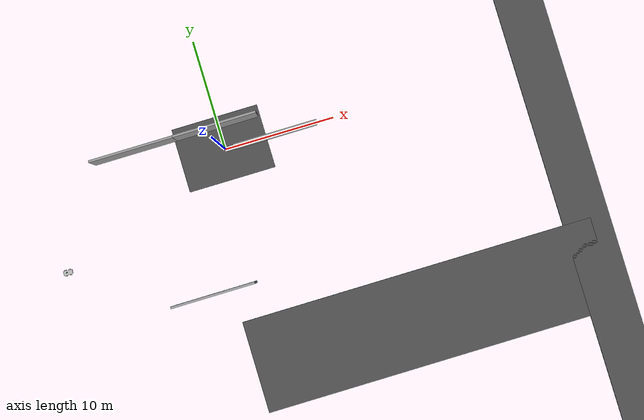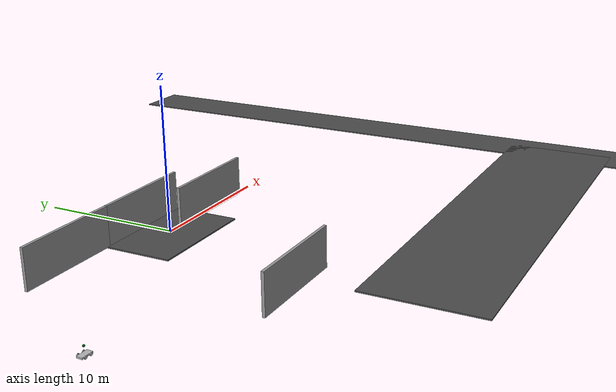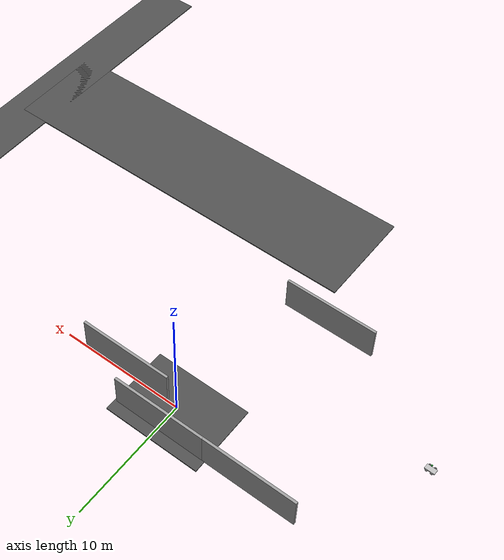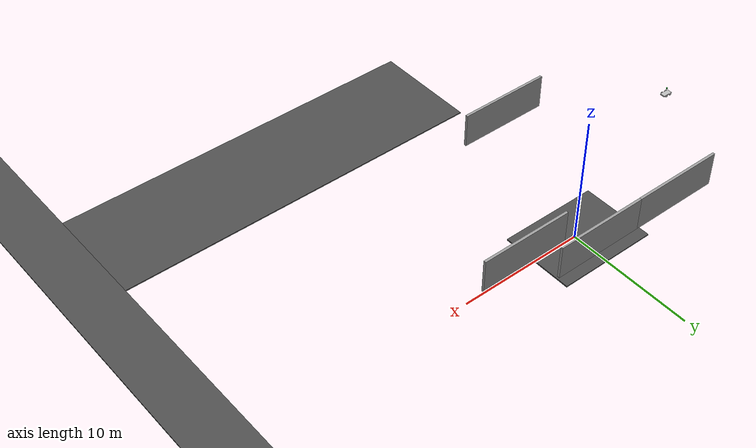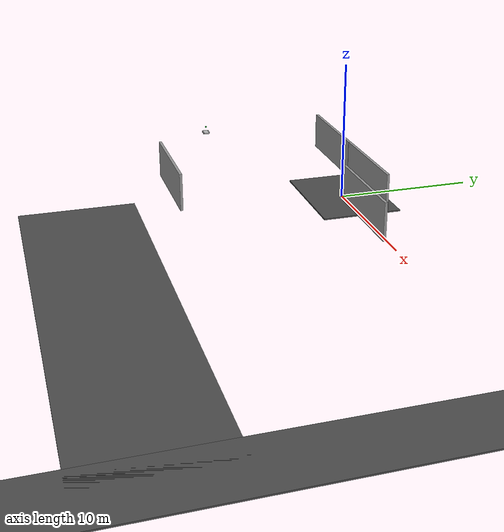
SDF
<sdf version="1.6">
 <world name="default">
  <light name="sun" type="directional">
   <pose>0 0 10 0 -0 0</pose>
   <diffuse>0.8 0.8 0.8 1</diffuse>
   <specular>0.1 0.1 0.1 1</specular>
   <attenuation>
    <range>1000</range>
    <constant>0.9</constant>
    <linear>0.01</linear>
    <quadratic>0.001</quadratic>
   </attenuation>
   <direction>-0.5 0.5 -1</direction>
  </light>
  <gravity>0 0 -9.8</gravity>
  <magnetic_field>6e-06 2.3e-05 -4.2e-05</magnetic_field>
  <atmosphere type="adiabatic"/>
  <physics name="default_physics" default="0" type="ode">
   <max_step_size>0.001</max_step_size>
   <real_time_factor>1</real_time_factor>
   <real_time_update_rate>1000</real_time_update_rate>
  </physics>
  <scene><ambient>0.4 0.4 0.4 1</ambient><background>0.7 0.7 0.7 1</background><shadows>1</shadows></scene>
  <spherical_coordinates>
   <surface_model>EARTH_WGS84</surface_model>
   <latitude_deg>0</latitude_deg>
   <longitude_deg>0</longitude_deg>
   <elevation>0</elevation>
   <heading_deg>0</heading_deg>
  </spherical_coordinates>
  <model name="asphalt_plane">
   <static>1</static>
   <link name="link">
    <collision name="collision"><geometry><box><size>7.87023 5.77134 0.101639</size></box></geometry></collision>
    <visual name="visual">
     <cast_shadows>0</cast_shadows>
     <geometry><box><size>7.87023 5.77134 0.101639</size></box></geometry>
     <material>
      <script>
       <uri>model://asphalt_plane/materials/scripts</uri>
       <uri>model://asphalt_plane/materials/textures</uri>
       <name>vrc/asphalt</name>
      </script>
     </material>
    </visual>
   </link>
   <pose>-0.150514 0.147671 0 0 -0 0</pose>
  </model>
  <model name="small_car">
   <link name="chassis">
    <inertial>
     <pose>0 0 0.203947 0 -0 0</pose>
     <mass>30.4</mass>
     <inertia>
      <ixx>5.03553</ixx>
      <ixy>4.03897e-28</ixy>
      <ixz>0</ixz>
      <iyy>25.0355</iyy>
      <iyz>0</iyz>
      <izz>4</izz>
     </inertia>
    </inertial>
    <collision name="chassis_fixed_joint_lump__collision_collision">
     <geometry><box><size>0.8 0.4 0.1</size></box></geometry>
    </collision>
    <collision name="chassis_fixed_joint_lump__camera_neg_y_collision_1">
     <pose>0 0 0.5 0 -0 3.14159</pose>
     <geometry><box><size>0.5 0.1 0.1</size></box></geometry>
    </collision>
    <collision name="chassis_fixed_joint_lump__camera_pos_x_collision_2">
     <pose>0 0 0.5 0 -0 0</pose>
     <geometry><box><size>0.1 0.5 0.1</size></box></geometry>
    </collision>
    <collision name="chassis_fixed_joint_lump__camera_neg_x_collision_3">
     <pose>0 0 0.5 0 -0 -5e-06</pose>
     <geometry><box><size>0.1 0.5 0.1</size></box></geometry>
    </collision>
    <collision name="chassis_fixed_joint_lump__camera_pos_y_collision_4">
     <pose>0 0 0.5 0 -0 3.14159</pose>
     <geometry><box><size>0.5 0.1 0.1</size></box></geometry>
    </collision>
    <visual name="chassis_visual_visual"><geometry><box><size>0.8 0.4 0.1</size></box></geometry></visual>
    <visual name="chassis_fixed_joint_lump__camera_neg_y_visual_1">
     <pose>0 0 0.5 0 -0 3.14159</pose>
     <geometry><box><size>0.1 0.1 0.1</size></box></geometry>
     <material>
      <script><name>Gazebo/Green</name><uri>file://media/materials/scripts/gazebo.material</uri></script>
     </material>
    </visual>
    <visual name="chassis_fixed_joint_lump__camera_pos_x_visual_2">
     <pose>0 0 0.5 0 -0 0</pose>
     <geometry><box><size>0.1 0.1 0.1</size></box></geometry>
     <material>
      <script><name>Gazebo/Green</name><uri>file://media/materials/scripts/gazebo.material</uri></script>
     </material>
    </visual>
    <visual name="chassis_fixed_joint_lump__camera_neg_x_visual_3">
     <pose>0 0 0.5 0 -0 -5e-06</pose>
     <geometry><box><size>0.1 0.1 0.1</size></box></geometry>
     <material>
      <script><name>Gazebo/Green</name><uri>file://media/materials/scripts/gazebo.material</uri></script>
     </material>
    </visual>
    <visual name="chassis_fixed_joint_lump__camera_pos_y_visual_4">
     <pose>0 0 0.5 0 -0 3.14159</pose>
     <geometry><box><size>0.1 0.1 0.1</size></box></geometry>
     <material>
      <script><name>Gazebo/Green</name><uri>file://media/materials/scripts/gazebo.material</uri></script>
     </material>
    </visual>
    <sensor name="camera4" type="wideanglecamera">
     <update_rate>30</update_rate>
     <camera name="head_4">
      <horizontal_fov>1.5708</horizontal_fov>
      <image><width>960</width><height>540</height><format>R8G8B8</format></image>
      <clip><near>0.02</near><far>300</far></clip>
      <lens>
       <type>custom</type>
       <custom_function><c1>1.07</c1><c2>4</c2><f>1</f><fun>tan</fun></custom_function>
       <scale_to_hfov>1</scale_to_hfov>
       <cutoff_angle>3.1415</cutoff_angle>
       <env_texture_size>512</env_texture_size>
      </lens>
     </camera>
     <plugin name="camera_controller" filename="libgazebo_ros_camera.so">
      <alwaysOn>true</alwaysOn>
      <updateRate>30.0</updateRate>
      <cameraName>mybot/camera4</cameraName>
      <imageTopicName>image_raw</imageTopicName>
      <cameraInfoTopicName>camera_info</cameraInfoTopicName>
      <frameName>camera</frameName>
      <hackBaseline>0.07</hackBaseline>
      <robotNamespace>/</robotNamespace>
     </plugin>
     <pose>0 0 0.5 0 -0 -1.5708</pose>
    </sensor>
    <sensor name="camera1" type="wideanglecamera">
     <update_rate>30</update_rate>
     <camera name="head_1">
      <horizontal_fov>1.5708</horizontal_fov>
      <image><width>960</width><height>540</height><format>R8G8B8</format></image>
      <clip><near>0.02</near><far>300</far></clip>
      <lens>
       <type>custom</type>
       <custom_function><c1>1.07</c1><c2>4</c2><f>1</f><fun>tan</fun></custom_function>
       <scale_to_hfov>1</scale_to_hfov>
       <cutoff_angle>3.1415</cutoff_angle>
       <env_texture_size>512</env_texture_size>
      </lens>
     </camera>
     <plugin name="camera_controller" filename="libgazebo_ros_camera.so">
      <alwaysOn>true</alwaysOn>
      <updateRate>30.0</updateRate>
      <cameraName>mybot/camera1</cameraName>
      <imageTopicName>image_raw</imageTopicName>
      <cameraInfoTopicName>camera_info</cameraInfoTopicName>
      <frameName>camera</frameName>
      <hackBaseline>0.07</hackBaseline>
      <robotNamespace>/</robotNamespace>
     </plugin>
     <pose>0 0 0.5 0 -0 0</pose>
    </sensor>
    <sensor name="camera3" type="wideanglecamera">
     <update_rate>30</update_rate>
     <camera name="head_3">
      <horizontal_fov>1.5708</horizontal_fov>
      <image><width>960</width><height>540</height><format>R8G8B8</format></image>
      <clip><near>0.02</near><far>300</far></clip>
      <lens>
       <type>custom</type>
       <custom_function><c1>1.07</c1><c2>4</c2><f>1</f><fun>tan</fun></custom_function>
       <scale_to_hfov>1</scale_to_hfov>
       <cutoff_angle>3.1415</cutoff_angle>
       <env_texture_size>512</env_texture_size>
      </lens>
     </camera>
     <plugin name="camera_controller" filename="libgazebo_ros_camera.so">
      <alwaysOn>true</alwaysOn>
      <updateRate>30.0</updateRate>
      <cameraName>mybot/camera3</cameraName>
      <imageTopicName>image_raw</imageTopicName>
      <cameraInfoTopicName>camera_info</cameraInfoTopicName>
      <frameName>camera</frameName>
      <hackBaseline>0.07</hackBaseline>
      <robotNamespace>/</robotNamespace>
     </plugin>
     <pose>0 0 0.5 0 -0 3.14159</pose>
    </sensor>
    <sensor name="camera2" type="wideanglecamera">
     <update_rate>30</update_rate>
     <camera name="head_2">
      <horizontal_fov>1.5708</horizontal_fov>
      <image><width>960</width><height>540</height><format>R8G8B8</format></image>
      <clip><near>0.02</near><far>300</far></clip>
      <lens>
       <type>custom</type>
       <custom_function><c1>1.07</c1><c2>4</c2><f>1</f><fun>tan</fun></custom_function>
       <scale_to_hfov>1</scale_to_hfov>
       <cutoff_angle>3.1415</cutoff_angle>
       <env_texture_size>512</env_texture_size>
      </lens>
     </camera>
     <plugin name="camera_controller" filename="libgazebo_ros_camera.so">
      <alwaysOn>true</alwaysOn>
      <updateRate>30.0</updateRate>
      <cameraName>mybot/camera2</cameraName>
      <imageTopicName>image_raw</imageTopicName>
      <cameraInfoTopicName>camera_info</cameraInfoTopicName>
      <frameName>camera</frameName>
      <hackBaseline>0.07</hackBaseline>
      <robotNamespace>/</robotNamespace>
     </plugin>
     <pose>0 0 0.5 0 -0 1.5708</pose>
    </sensor>
   </link>
   <link name="back_left_wheel">
    <pose>-0.2 0.25 0 0 -0 0</pose>
    <inertial>
     <pose>0 0 0 -0 1.5707 1.5707</pose>
     <mass>5</mass>
     <inertia><ixx>1</ixx><ixy>0</ixy><ixz>0</ixz><iyy>1</iyy><iyz>0</iyz><izz>1</izz></inertia>
    </inertial>
    <collision name="back_left_wheel_fixed_joint_lump__collision_collision">
     <pose>0 0 0 3.14159 1.57079 -1.57089</pose>
     <geometry><cylinder><length>0.05</length><radius>0.1</radius></cylinder></geometry>
    </collision>
    <visual name="back_left_wheel_visual_visual">
     <pose>0 0 0 3.14159 1.57079 -1.57089</pose>
     <geometry><cylinder><length>0.05</length><radius>0.1</radius></cylinder></geometry>
    </visual>
   </link>
   <joint name="back_left_wheel_joint" type="revolute">
    <child>back_left_wheel</child>
    <parent>chassis</parent>
    <axis>
     <xyz>0 1 0</xyz>
     <limit><lower>-1e+16</lower><upper>1e+16</upper></limit>
     <dynamics><spring_reference>0</spring_reference><spring_stiffness>0</spring_stiffness></dynamics>
     <use_parent_model_frame>1</use_parent_model_frame>
    </axis>
   </joint>
   <link name="back_right_wheel">
    <pose>-0.2 -0.25 0 0 -0 0</pose>
    <inertial>
     <pose>0 0 0 -0 1.5707 1.5707</pose>
     <mass>5</mass>
     <inertia><ixx>1</ixx><ixy>0</ixy><ixz>0</ixz><iyy>1</iyy><iyz>0</iyz><izz>1</izz></inertia>
    </inertial>
    <collision name="back_right_wheel_fixed_joint_lump__collision_collision">
     <pose>0 0 0 3.14159 1.57079 -1.57089</pose>
     <geometry><cylinder><length>0.05</length><radius>0.1</radius></cylinder></geometry>
    </collision>
    <visual name="back_right_wheel_visual_visual">
     <pose>0 0 0 3.14159 1.57079 -1.57089</pose>
     <geometry><cylinder><length>0.05</length><radius>0.1</radius></cylinder></geometry>
    </visual>
   </link>
   <joint name="back_right_wheel_joint" type="revolute">
    <child>back_right_wheel</child>
    <parent>chassis</parent>
    <axis>
     <xyz>0 1 0</xyz>
     <limit><lower>-1e+16</lower><upper>1e+16</upper></limit>
     <dynamics><spring_reference>0</spring_reference><spring_stiffness>0</spring_stiffness></dynamics>
     <use_parent_model_frame>1</use_parent_model_frame>
    </axis>
   </joint>
   <link name="front_left_wheel">
    <pose>0.2 0.25 0 0 -0 0</pose>
    <inertial>
     <pose>0 0 0 -0 1.5707 1.5707</pose>
     <mass>5</mass>
     <inertia><ixx>1</ixx><ixy>0</ixy><ixz>0</ixz><iyy>1</iyy><iyz>0</iyz><izz>1</izz></inertia>
    </inertial>
    <collision name="front_left_wheel_fixed_joint_lump__collision_collision">
     <pose>0 0 0 3.14159 1.57079 -1.57089</pose>
     <geometry><cylinder><length>0.05</length><radius>0.1</radius></cylinder></geometry>
    </collision>
    <visual name="front_left_wheel_visual_visual">
     <pose>0 0 0 3.14159 1.57079 -1.57089</pose>
     <geometry><cylinder><length>0.05</length><radius>0.1</radius></cylinder></geometry>
    </visual>
   </link>
   <joint name="front_left_wheel_joint" type="revolute">
    <child>front_left_wheel</child>
    <parent>chassis</parent>
    <axis>
     <xyz>0 1 0</xyz>
     <limit><lower>-1e+16</lower><upper>1e+16</upper></limit>
     <dynamics><spring_reference>0</spring_reference><spring_stiffness>0</spring_stiffness></dynamics>
     <use_parent_model_frame>1</use_parent_model_frame>
    </axis>
   </joint>
   <link name="front_right_wheel">
    <pose>0.2 -0.25 0 0 -0 0</pose>
    <inertial>
     <pose>0 0 0 -0 1.5707 1.5707</pose>
     <mass>5</mass>
     <inertia><ixx>1</ixx><ixy>0</ixy><ixz>0</ixz><iyy>1</iyy><iyz>0</iyz><izz>1</izz></inertia>
    </inertial>
    <collision name="front_right_wheel_fixed_joint_lump__collision_collision">
     <pose>0 0 0 3.14159 1.57079 -1.57089</pose>
     <geometry><cylinder><length>0.05</length><radius>0.1</radius></cylinder></geometry>
    </collision>
    <visual name="front_right_wheel_visual_visual">
     <pose>0 0 0 3.14159 1.57079 -1.57089</pose>
     <geometry><cylinder><length>0.05</length><radius>0.1</radius></cylinder></geometry>
    </visual>
   </link>
   <joint name="front_right_wheel_joint" type="revolute">
    <child>front_right_wheel</child>
    <parent>chassis</parent>
    <axis>
     <xyz>0 1 0</xyz>
     <limit><lower>-1e+16</lower><upper>1e+16</upper></limit>
     <dynamics><spring_reference>0</spring_reference><spring_stiffness>0</spring_stiffness></dynamics>
     <use_parent_model_frame>1</use_parent_model_frame>
    </axis>
   </joint>
   <static>0</static>
   <plugin name="skid_steer_drive_controller" filename="libgazebo_ros_skid_steer_drive.so">
    <updateRate>100.0</updateRate>
    <robotNamespace>/</robotNamespace>
    <leftFrontJoint>front_left_wheel_joint</leftFrontJoint>
    <rightFrontJoint>front_right_wheel_joint</rightFrontJoint>
    <leftRearJoint>back_left_wheel_joint</leftRearJoint>
    <rightRearJoint>back_right_wheel_joint</rightRearJoint>
    <wheelSeparation>0.1</wheelSeparation>
    <wheelDiameter>0.2</wheelDiameter>
    <robotBaseFrame>chassis</robotBaseFrame>
    <torque>20</torque>
    <topicName>cmd_vel</topicName>
    <broadcastTF>false</broadcastTF>
   </plugin>
   <pose>-16.2831 -6.46267 0.485509 -5e-06 -0 -0.033069</pose>
  </model>
  <model name="asphalt_plane_0">
   <static>1</static>
   <link name="link">
    <collision name="collision"><geometry><box><size>4.23513 893.526 0.1</size></box></geometry></collision>
    <visual name="visual">
     <cast_shadows>0</cast_shadows>
     <geometry><box><size>4.23513 893.526 0.1</size></box></geometry>
     <material>
      <script>
       <uri>model://asphalt_plane/materials/scripts</uri>
       <uri>model://asphalt_plane/materials/textures</uri>
       <name>vrc/asphalt</name>
      </script>
     </material>
    </visual>
   </link>
   <pose>28.7549 3.54543 0 0 -0 0</pose>
  </model>
  <model name="asphalt_plane_0_clone">
   <static>1</static>
   <link name="link">
    <collision name="collision"><geometry><box><size>32.0827 8.30382 0.1</size></box></geometry></collision>
    <visual name="visual">
     <cast_shadows>0</cast_shadows>
     <geometry><box><size>32.0827 8.30382 0.1</size></box></geometry>
     <material>
      <script>
       <uri>model://asphalt_plane/materials/scripts</uri>
       <uri>model://asphalt_plane/materials/textures</uri>
       <name>vrc/asphalt</name>
      </script>
     </material>
    </visual>
   </link>
   <pose>13.1211 -19.2207 0 0 -0 0</pose>
  </model>
  <model name="grey_wall_0">
   <static>1</static>
   <link name="link">
    <pose>0 0 1.4 0 -0 0</pose>
    <collision name="collision"><geometry><box><size>7.5 0.2 2.8</size></box></geometry></collision>
    <visual name="visual">
     <cast_shadows>0</cast_shadows>
     <geometry><box><size>7.5 0.2 2.8</size></box></geometry>
     <material>
      <script>
       <uri>model://grey_wall/materials/scripts</uri>
       <uri>model://grey_wall/materials/textures</uri>
       <name>vrc/grey_wall</name>
      </script>
     </material>
    </visual>
   </link>
   <pose>-7.61503 2.04689 0 0 -0 0</pose>
  </model>
  <model name="grey_wall_1">
   <static>1</static>
   <link name="link">
    <pose>0 0 1.4 0 -0 0</pose>
    <collision name="collision"><geometry><box><size>7.5 0.2 2.8</size></box></geometry></collision>
    <visual name="visual">
     <cast_shadows>0</cast_shadows>
     <geometry><box><size>7.5 0.2 2.8</size></box></geometry>
     <material>
      <script>
       <uri>model://grey_wall/materials/scripts</uri>
       <uri>model://grey_wall/materials/textures</uri>
       <name>vrc/grey_wall</name>
      </script>
     </material>
    </visual>
   </link>
   <pose>-0.123127 2.05738 0 0 -0 0</pose>
  </model>
  <model name="grey_wall_2">
   <static>1</static>
   <link name="link">
    <pose>0 0 1.4 0 -0 0</pose>
    <collision name="collision"><geometry><box><size>7.5 0.2 2.8</size></box></geometry></collision>
    <visual name="visual">
     <cast_shadows>0</cast_shadows>
     <geometry><box><size>7.5 0.2 2.8</size></box></geometry>
     <material>
      <script>
       <uri>model://grey_wall/materials/scripts</uri>
       <uri>model://grey_wall/materials/textures</uri>
       <name>vrc/grey_wall</name>
      </script>
     </material>
    </visual>
   </link>
   <pose>4.65658 -0.163295 0 0 -0 0</pose>
  </model>
  <model name="grey_wall_3">
   <static>1</static>
   <link name="link">
    <pose>0 0 1.4 0 -0 0</pose>
    <collision name="collision"><geometry><box><size>7.5 0.2 2.8</size></box></geometry></collision>
    <visual name="visual">
     <cast_shadows>0</cast_shadows>
     <geometry><box><size>7.5 0.2 2.8</size></box></geometry>
     <material>
      <script>
       <uri>model://grey_wall/materials/scripts</uri>
       <uri>model://grey_wall/materials/textures</uri>
       <name>vrc/grey_wall</name>
      </script>
     </material>
    </visual>
   </link>
   <pose>-4.39771 -12.0153 0 0 -0 0</pose>
  </model>
 </world>
</sdf>
